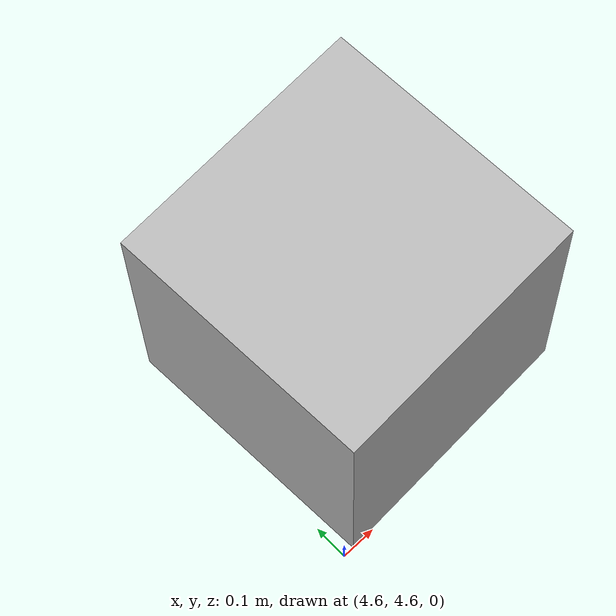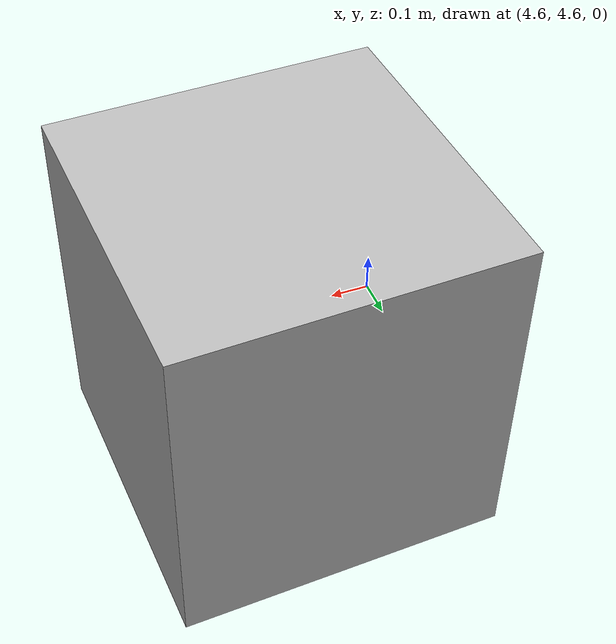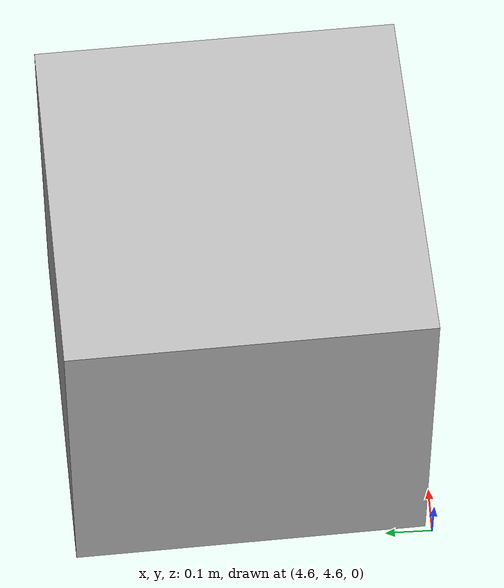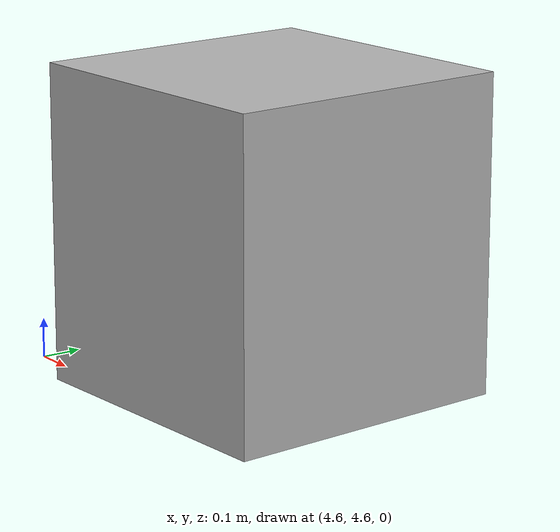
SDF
<?xml version="1.0" ?>
<sdf version="1.6">
   <model name="ur_box">
    <static>true</static>
    <pose>5 5 0.35 0 0 -1.53</pose> <!-- Centered on ground, z = half height -->
    <link name="kuka_link">
        <collision name="collision">
      <geometry>
        <mesh>
          <uri>/home/marat/exchange_project_ws/src/models/ur5e_model_pkg/meshes/ur_box/ur_box.dae</uri>
        </mesh>
      </geometry>
        </collision>
        <visual name="visual">
      <geometry>
        <mesh>
          <uri>/home/marat/exchange_project_ws/src/models/ur5e_model_pkg/meshes/ur_box/ur_box.dae</uri>
        </mesh>
      </geometry>
        </visual>
    </link>
    </model>
</sdf>
